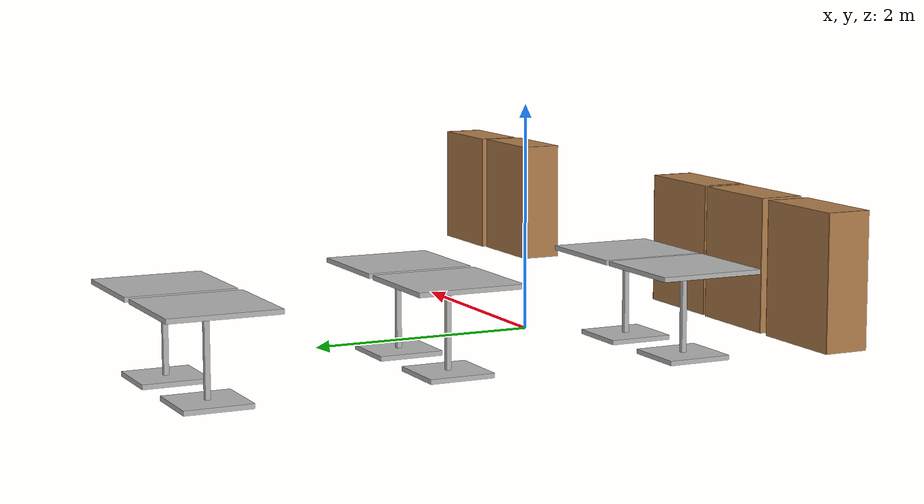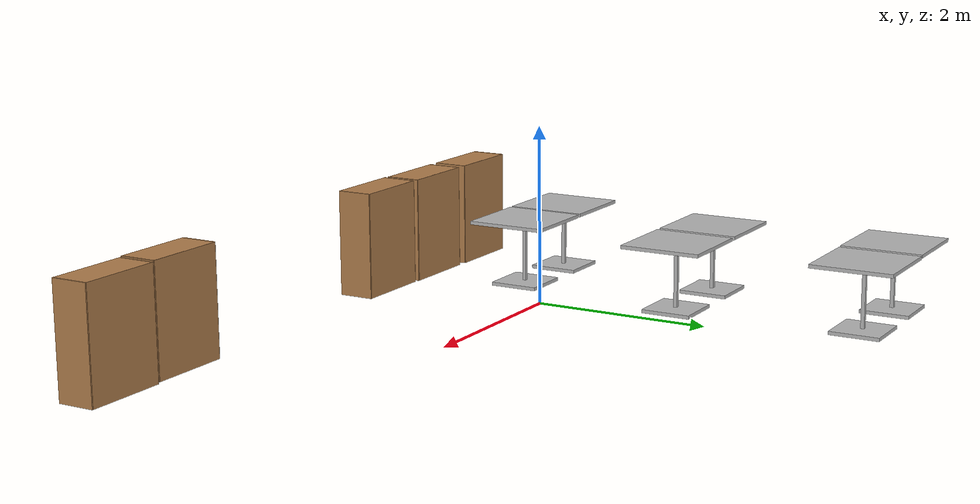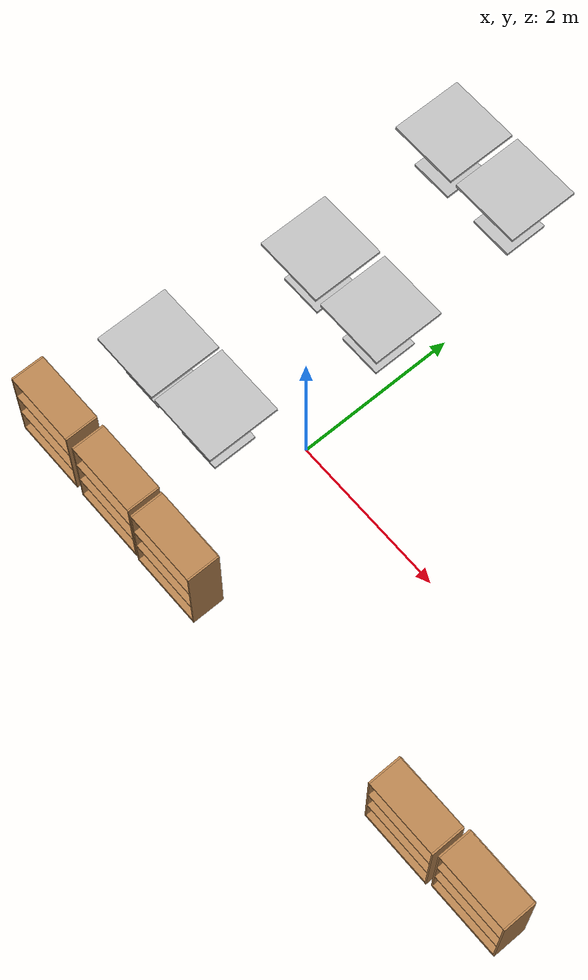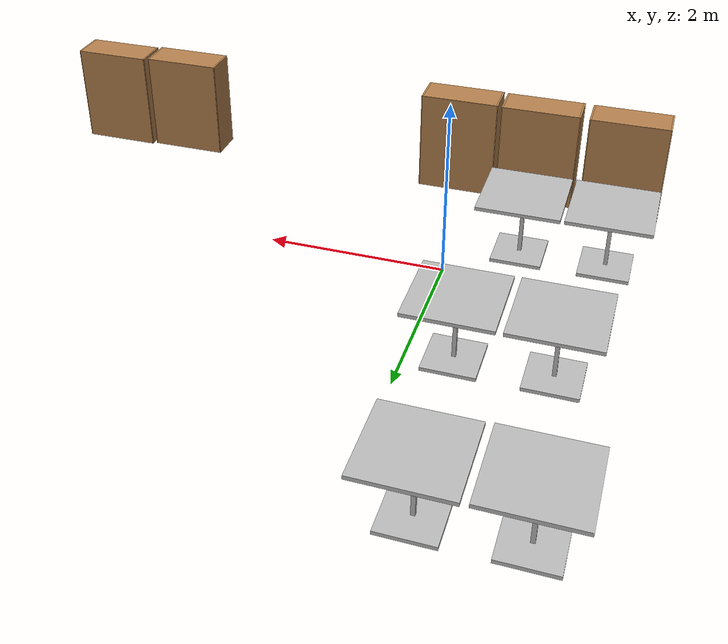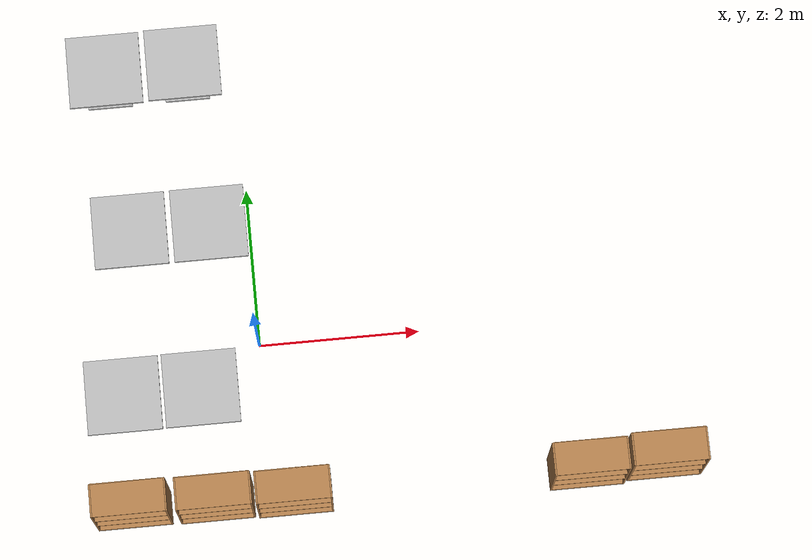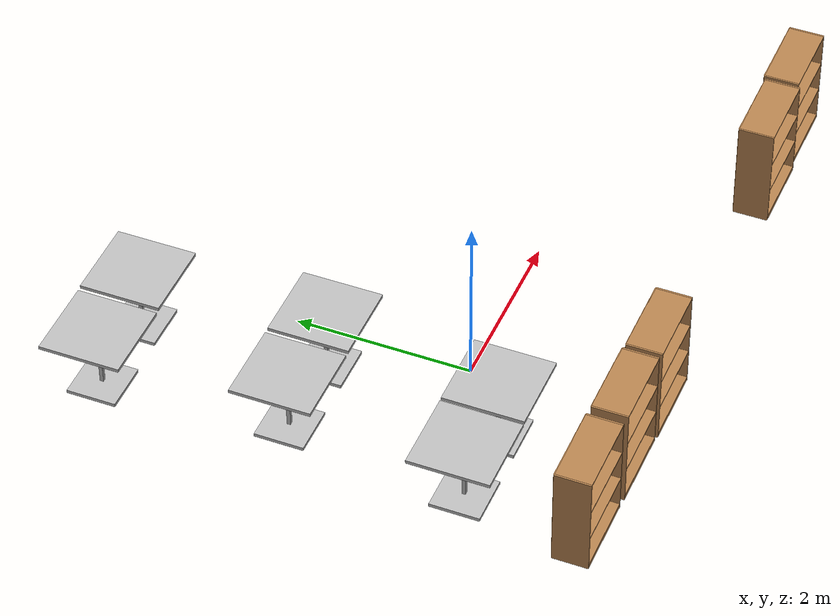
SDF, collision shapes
<?xml version='1.0'?>
<sdf version='1.7'>
  <model name='faux-office'>
    <model name='bookshelf'>
      <static>1</static>
      <link name='link'>
        <inertial>
          <mass>1</mass>
        </inertial>
        <collision name='back'>
          <pose>0 0.005 0.6 0 -0 0</pose>
          <geometry>
            <box>
              <size>0.9 0.01 1.2</size>
            </box>
          </geometry>
        </collision>
        <visual name='visual1'>
          <pose>0 0.005 0.6 0 -0 0</pose>
          <geometry>
            <box>
              <size>0.9 0.01 1.2</size>
            </box>
          </geometry>
          <material>
            <script>
              <uri>file://media/materials/scripts/gazebo.material</uri>
              <name>Gazebo/Wood</name>
            </script>
          </material>
        </visual>
        <collision name='left_side'>
          <pose>0.45 -0.195 0.6 0 -0 0</pose>
          <geometry>
            <box>
              <size>0.02 0.4 1.2</size>
            </box>
          </geometry>
        </collision>
        <visual name='visual2'>
          <pose>0.45 -0.195 0.6 0 -0 0</pose>
          <geometry>
            <box>
              <size>0.02 0.4 1.2</size>
            </box>
          </geometry>
          <material>
            <script>
              <uri>file://media/materials/scripts/gazebo.material</uri>
              <name>Gazebo/Wood</name>
            </script>
          </material>
        </visual>
        <collision name='right_side'>
          <pose>-0.45 -0.195 0.6 0 -0 0</pose>
          <geometry>
            <box>
              <size>0.02 0.4 1.2</size>
            </box>
          </geometry>
        </collision>
        <visual name='visual3'>
          <pose>-0.45 -0.195 0.6 0 -0 0</pose>
          <geometry>
            <box>
              <size>0.02 0.4 1.2</size>
            </box>
          </geometry>
          <material>
            <script>
              <uri>file://media/materials/scripts/gazebo.material</uri>
              <name>Gazebo/Wood</name>
            </script>
          </material>
        </visual>
        <collision name='bottom'>
          <pose>0 -0.195 0.03 0 -0 0</pose>
          <geometry>
            <box>
              <size>0.88 0.4 0.06</size>
            </box>
          </geometry>
        </collision>
        <visual name='visual4'>
          <pose>0 -0.195 0.03 0 -0 0</pose>
          <geometry>
            <box>
              <size>0.88 0.4 0.06</size>
            </box>
          </geometry>
          <material>
            <script>
              <uri>file://media/materials/scripts/gazebo.material</uri>
              <name>Gazebo/Wood</name>
            </script>
          </material>
        </visual>
        <collision name='top'>
          <pose>0 -0.195 1.19 0 -0 0</pose>
          <geometry>
            <box>
              <size>0.88 0.4 0.02</size>
            </box>
          </geometry>
        </collision>
        <visual name='visual5'>
          <pose>0 -0.195 1.19 0 -0 0</pose>
          <geometry>
            <box>
              <size>0.88 0.4 0.02</size>
            </box>
          </geometry>
          <material>
            <script>
              <uri>file://media/materials/scripts/gazebo.material</uri>
              <name>Gazebo/Wood</name>
            </script>
          </material>
        </visual>
        <collision name='low_shelf'>
          <pose>0 -0.195 0.43 0 -0 0</pose>
          <geometry>
            <box>
              <size>0.88 0.4 0.02</size>
            </box>
          </geometry>
        </collision>
        <visual name='visual6'>
          <pose>0 -0.195 0.43 0 -0 0</pose>
          <geometry>
            <box>
              <size>0.88 0.4 0.02</size>
            </box>
          </geometry>
          <material>
            <script>
              <uri>file://media/materials/scripts/gazebo.material</uri>
              <name>Gazebo/Wood</name>
            </script>
          </material>
        </visual>
        <collision name='high_shelf'>
          <pose>0 -0.195 0.8 0 -0 0</pose>
          <geometry>
            <box>
              <size>0.88 0.4 0.02</size>
            </box>
          </geometry>
        </collision>
        <visual name='visual7'>
          <pose>0 -0.195 0.8 0 -0 0</pose>
          <geometry>
            <box>
              <size>0.88 0.4 0.02</size>
            </box>
          </geometry>
          <material>
            <script>
              <uri>file://media/materials/scripts/gazebo.material</uri>
              <name>Gazebo/Wood</name>
            </script>
          </material>
        </visual>
      </link>
      <pose>-1.70086 -1.74218 0 0 -0 0</pose>
    </model>
    <model name='bookshelf_clone_0'>
      <static>1</static>
      <link name='link'>
        <inertial>
          <mass>1</mass>
        </inertial>
        <collision name='back'>
          <pose>0 0.005 0.6 0 -0 0</pose>
          <geometry>
            <box>
              <size>0.9 0.01 1.2</size>
            </box>
          </geometry>
        </collision>
        <visual name='visual1'>
          <pose>0 0.005 0.6 0 -0 0</pose>
          <geometry>
            <box>
              <size>0.9 0.01 1.2</size>
            </box>
          </geometry>
          <material>
            <script>
              <uri>file://media/materials/scripts/gazebo.material</uri>
              <name>Gazebo/Wood</name>
            </script>
          </material>
        </visual>
        <collision name='left_side'>
          <pose>0.45 -0.195 0.6 0 -0 0</pose>
          <geometry>
            <box>
              <size>0.02 0.4 1.2</size>
            </box>
          </geometry>
        </collision>
        <visual name='visual2'>
          <pose>0.45 -0.195 0.6 0 -0 0</pose>
          <geometry>
            <box>
              <size>0.02 0.4 1.2</size>
            </box>
          </geometry>
          <material>
            <script>
              <uri>file://media/materials/scripts/gazebo.material</uri>
              <name>Gazebo/Wood</name>
            </script>
          </material>
        </visual>
        <collision name='right_side'>
          <pose>-0.45 -0.195 0.6 0 -0 0</pose>
          <geometry>
            <box>
              <size>0.02 0.4 1.2</size>
            </box>
          </geometry>
        </collision>
        <visual name='visual3'>
          <pose>-0.45 -0.195 0.6 0 -0 0</pose>
          <geometry>
            <box>
              <size>0.02 0.4 1.2</size>
            </box>
          </geometry>
          <material>
            <script>
              <uri>file://media/materials/scripts/gazebo.material</uri>
              <name>Gazebo/Wood</name>
            </script>
          </material>
        </visual>
        <collision name='bottom'>
          <pose>0 -0.195 0.03 0 -0 0</pose>
          <geometry>
            <box>
              <size>0.88 0.4 0.06</size>
            </box>
          </geometry>
        </collision>
        <visual name='visual4'>
          <pose>0 -0.195 0.03 0 -0 0</pose>
          <geometry>
            <box>
              <size>0.88 0.4 0.06</size>
            </box>
          </geometry>
          <material>
            <script>
              <uri>file://media/materials/scripts/gazebo.material</uri>
              <name>Gazebo/Wood</name>
            </script>
          </material>
        </visual>
        <collision name='top'>
          <pose>0 -0.195 1.19 0 -0 0</pose>
          <geometry>
            <box>
              <size>0.88 0.4 0.02</size>
            </box>
          </geometry>
        </collision>
        <visual name='visual5'>
          <pose>0 -0.195 1.19 0 -0 0</pose>
          <geometry>
            <box>
              <size>0.88 0.4 0.02</size>
            </box>
          </geometry>
          <material>
            <script>
              <uri>file://media/materials/scripts/gazebo.material</uri>
              <name>Gazebo/Wood</name>
            </script>
          </material>
        </visual>
        <collision name='low_shelf'>
          <pose>0 -0.195 0.43 0 -0 0</pose>
          <geometry>
            <box>
              <size>0.88 0.4 0.02</size>
            </box>
          </geometry>
        </collision>
        <visual name='visual6'>
          <pose>0 -0.195 0.43 0 -0 0</pose>
          <geometry>
            <box>
              <size>0.88 0.4 0.02</size>
            </box>
          </geometry>
          <material>
            <script>
              <uri>file://media/materials/scripts/gazebo.material</uri>
              <name>Gazebo/Wood</name>
            </script>
          </material>
        </visual>
        <collision name='high_shelf'>
          <pose>0 -0.195 0.8 0 -0 0</pose>
          <geometry>
            <box>
              <size>0.88 0.4 0.02</size>
            </box>
          </geometry>
        </collision>
        <visual name='visual7'>
          <pose>0 -0.195 0.8 0 -0 0</pose>
          <geometry>
            <box>
              <size>0.88 0.4 0.02</size>
            </box>
          </geometry>
          <material>
            <script>
              <uri>file://media/materials/scripts/gazebo.material</uri>
              <name>Gazebo/Wood</name>
            </script>
          </material>
        </visual>
      </link>
      <pose>-0.681293 -1.75133 0 0 -0 0</pose>
    </model>
    <model name='bookshelf_clone_0_clone'>
      <static>1</static>
      <link name='link'>
        <inertial>
          <mass>1</mass>
        </inertial>
        <collision name='back'>
          <pose>0 0.005 0.6 0 -0 0</pose>
          <geometry>
            <box>
              <size>0.9 0.01 1.2</size>
            </box>
          </geometry>
        </collision>
        <visual name='visual1'>
          <pose>0 0.005 0.6 0 -0 0</pose>
          <geometry>
            <box>
              <size>0.9 0.01 1.2</size>
            </box>
          </geometry>
          <material>
            <script>
              <uri>file://media/materials/scripts/gazebo.material</uri>
              <name>Gazebo/Wood</name>
            </script>
          </material>
        </visual>
        <collision name='left_side'>
          <pose>0.45 -0.195 0.6 0 -0 0</pose>
          <geometry>
            <box>
              <size>0.02 0.4 1.2</size>
            </box>
          </geometry>
        </collision>
        <visual name='visual2'>
          <pose>0.45 -0.195 0.6 0 -0 0</pose>
          <geometry>
            <box>
              <size>0.02 0.4 1.2</size>
            </box>
          </geometry>
          <material>
            <script>
              <uri>file://media/materials/scripts/gazebo.material</uri>
              <name>Gazebo/Wood</name>
            </script>
          </material>
        </visual>
        <collision name='right_side'>
          <pose>-0.45 -0.195 0.6 0 -0 0</pose>
          <geometry>
            <box>
              <size>0.02 0.4 1.2</size>
            </box>
          </geometry>
        </collision>
        <visual name='visual3'>
          <pose>-0.45 -0.195 0.6 0 -0 0</pose>
          <geometry>
            <box>
              <size>0.02 0.4 1.2</size>
            </box>
          </geometry>
          <material>
            <script>
              <uri>file://media/materials/scripts/gazebo.material</uri>
              <name>Gazebo/Wood</name>
            </script>
          </material>
        </visual>
        <collision name='bottom'>
          <pose>0 -0.195 0.03 0 -0 0</pose>
          <geometry>
            <box>
              <size>0.88 0.4 0.06</size>
            </box>
          </geometry>
        </collision>
        <visual name='visual4'>
          <pose>0 -0.195 0.03 0 -0 0</pose>
          <geometry>
            <box>
              <size>0.88 0.4 0.06</size>
            </box>
          </geometry>
          <material>
            <script>
              <uri>file://media/materials/scripts/gazebo.material</uri>
              <name>Gazebo/Wood</name>
            </script>
          </material>
        </visual>
        <collision name='top'>
          <pose>0 -0.195 1.19 0 -0 0</pose>
          <geometry>
            <box>
              <size>0.88 0.4 0.02</size>
            </box>
          </geometry>
        </collision>
        <visual name='visual5'>
          <pose>0 -0.195 1.19 0 -0 0</pose>
          <geometry>
            <box>
              <size>0.88 0.4 0.02</size>
            </box>
          </geometry>
          <material>
            <script>
              <uri>file://media/materials/scripts/gazebo.material</uri>
              <name>Gazebo/Wood</name>
            </script>
          </material>
        </visual>
        <collision name='low_shelf'>
          <pose>0 -0.195 0.43 0 -0 0</pose>
          <geometry>
            <box>
              <size>0.88 0.4 0.02</size>
            </box>
          </geometry>
        </collision>
        <visual name='visual6'>
          <pose>0 -0.195 0.43 0 -0 0</pose>
          <geometry>
            <box>
              <size>0.88 0.4 0.02</size>
            </box>
          </geometry>
          <material>
            <script>
              <uri>file://media/materials/scripts/gazebo.material</uri>
              <name>Gazebo/Wood</name>
            </script>
          </material>
        </visual>
        <collision name='high_shelf'>
          <pose>0 -0.195 0.8 0 -0 0</pose>
          <geometry>
            <box>
              <size>0.88 0.4 0.02</size>
            </box>
          </geometry>
        </collision>
        <visual name='visual7'>
          <pose>0 -0.195 0.8 0 -0 0</pose>
          <geometry>
            <box>
              <size>0.88 0.4 0.02</size>
            </box>
          </geometry>
          <material>
            <script>
              <uri>file://media/materials/scripts/gazebo.material</uri>
              <name>Gazebo/Wood</name>
            </script>
          </material>
        </visual>
      </link>
      <pose>0.283423 -1.76584 0 0 -0 0</pose>
    </model>
    <model name='bookshelf_clone_0_clone_clone'>
      <static>1</static>
      <link name='link'>
        <inertial>
          <mass>1</mass>
        </inertial>
        <collision name='back'>
          <pose>0 0.005 0.6 0 -0 0</pose>
          <geometry>
            <box>
              <size>0.9 0.01 1.2</size>
            </box>
          </geometry>
        </collision>
        <visual name='visual1'>
          <pose>0 0.005 0.6 0 -0 0</pose>
          <geometry>
            <box>
              <size>0.9 0.01 1.2</size>
            </box>
          </geometry>
          <material>
            <script>
              <uri>file://media/materials/scripts/gazebo.material</uri>
              <name>Gazebo/Wood</name>
            </script>
          </material>
        </visual>
        <collision name='left_side'>
          <pose>0.45 -0.195 0.6 0 -0 0</pose>
          <geometry>
            <box>
              <size>0.02 0.4 1.2</size>
            </box>
          </geometry>
        </collision>
        <visual name='visual2'>
          <pose>0.45 -0.195 0.6 0 -0 0</pose>
          <geometry>
            <box>
              <size>0.02 0.4 1.2</size>
            </box>
          </geometry>
          <material>
            <script>
              <uri>file://media/materials/scripts/gazebo.material</uri>
              <name>Gazebo/Wood</name>
            </script>
          </material>
        </visual>
        <collision name='right_side'>
          <pose>-0.45 -0.195 0.6 0 -0 0</pose>
          <geometry>
            <box>
              <size>0.02 0.4 1.2</size>
            </box>
          </geometry>
        </collision>
        <visual name='visual3'>
          <pose>-0.45 -0.195 0.6 0 -0 0</pose>
          <geometry>
            <box>
              <size>0.02 0.4 1.2</size>
            </box>
          </geometry>
          <material>
            <script>
              <uri>file://media/materials/scripts/gazebo.material</uri>
              <name>Gazebo/Wood</name>
            </script>
          </material>
        </visual>
        <collision name='bottom'>
          <pose>0 -0.195 0.03 0 -0 0</pose>
          <geometry>
            <box>
              <size>0.88 0.4 0.06</size>
            </box>
          </geometry>
        </collision>
        <visual name='visual4'>
          <pose>0 -0.195 0.03 0 -0 0</pose>
          <geometry>
            <box>
              <size>0.88 0.4 0.06</size>
            </box>
          </geometry>
          <material>
            <script>
              <uri>file://media/materials/scripts/gazebo.material</uri>
              <name>Gazebo/Wood</name>
            </script>
          </material>
        </visual>
        <collision name='top'>
          <pose>0 -0.195 1.19 0 -0 0</pose>
          <geometry>
            <box>
              <size>0.88 0.4 0.02</size>
            </box>
          </geometry>
        </collision>
        <visual name='visual5'>
          <pose>0 -0.195 1.19 0 -0 0</pose>
          <geometry>
            <box>
              <size>0.88 0.4 0.02</size>
            </box>
          </geometry>
          <material>
            <script>
              <uri>file://media/materials/scripts/gazebo.material</uri>
              <name>Gazebo/Wood</name>
            </script>
          </material>
        </visual>
        <collision name='low_shelf'>
          <pose>0 -0.195 0.43 0 -0 0</pose>
          <geometry>
            <box>
              <size>0.88 0.4 0.02</size>
            </box>
          </geometry>
        </collision>
        <visual name='visual6'>
          <pose>0 -0.195 0.43 0 -0 0</pose>
          <geometry>
            <box>
              <size>0.88 0.4 0.02</size>
            </box>
          </geometry>
          <material>
            <script>
              <uri>file://media/materials/scripts/gazebo.material</uri>
              <name>Gazebo/Wood</name>
            </script>
          </material>
        </visual>
        <collision name='high_shelf'>
          <pose>0 -0.195 0.8 0 -0 0</pose>
          <geometry>
            <box>
              <size>0.88 0.4 0.02</size>
            </box>
          </geometry>
        </collision>
        <visual name='visual7'>
          <pose>0 -0.195 0.8 0 -0 0</pose>
          <geometry>
            <box>
              <size>0.88 0.4 0.02</size>
            </box>
          </geometry>
          <material>
            <script>
              <uri>file://media/materials/scripts/gazebo.material</uri>
              <name>Gazebo/Wood</name>
            </script>
          </material>
        </visual>
      </link>
      <pose>3.88748 -1.75471 0 0 -0 0</pose>
    </model>
    <model name='bookshelf_clone_0_clone_clone_clone'>
      <static>1</static>
      <link name='link'>
        <inertial>
          <mass>1</mass>
        </inertial>
        <collision name='back'>
          <pose>0 0.005 0.6 0 -0 0</pose>
          <geometry>
            <box>
              <size>0.9 0.01 1.2</size>
            </box>
          </geometry>
        </collision>
        <visual name='visual1'>
          <pose>0 0.005 0.6 0 -0 0</pose>
          <geometry>
            <box>
              <size>0.9 0.01 1.2</size>
            </box>
          </geometry>
          <material>
            <script>
              <uri>file://media/materials/scripts/gazebo.material</uri>
              <name>Gazebo/Wood</name>
            </script>
          </material>
        </visual>
        <collision name='left_side'>
          <pose>0.45 -0.195 0.6 0 -0 0</pose>
          <geometry>
            <box>
              <size>0.02 0.4 1.2</size>
            </box>
          </geometry>
        </collision>
        <visual name='visual2'>
          <pose>0.45 -0.195 0.6 0 -0 0</pose>
          <geometry>
            <box>
              <size>0.02 0.4 1.2</size>
            </box>
          </geometry>
          <material>
            <script>
              <uri>file://media/materials/scripts/gazebo.material</uri>
              <name>Gazebo/Wood</name>
            </script>
          </material>
        </visual>
        <collision name='right_side'>
          <pose>-0.45 -0.195 0.6 0 -0 0</pose>
          <geometry>
            <box>
              <size>0.02 0.4 1.2</size>
            </box>
          </geometry>
        </collision>
        <visual name='visual3'>
          <pose>-0.45 -0.195 0.6 0 -0 0</pose>
          <geometry>
            <box>
              <size>0.02 0.4 1.2</size>
            </box>
          </geometry>
          <material>
            <script>
              <uri>file://media/materials/scripts/gazebo.material</uri>
              <name>Gazebo/Wood</name>
            </script>
          </material>
        </visual>
        <collision name='bottom'>
          <pose>0 -0.195 0.03 0 -0 0</pose>
          <geometry>
            <box>
              <size>0.88 0.4 0.06</size>
            </box>
          </geometry>
        </collision>
        <visual name='visual4'>
          <pose>0 -0.195 0.03 0 -0 0</pose>
          <geometry>
            <box>
              <size>0.88 0.4 0.06</size>
            </box>
          </geometry>
          <material>
            <script>
              <uri>file://media/materials/scripts/gazebo.material</uri>
              <name>Gazebo/Wood</name>
            </script>
          </material>
        </visual>
        <collision name='top'>
          <pose>0 -0.195 1.19 0 -0 0</pose>
          <geometry>
            <box>
              <size>0.88 0.4 0.02</size>
            </box>
          </geometry>
        </collision>
        <visual name='visual5'>
          <pose>0 -0.195 1.19 0 -0 0</pose>
          <geometry>
            <box>
              <size>0.88 0.4 0.02</size>
            </box>
          </geometry>
          <material>
            <script>
              <uri>file://media/materials/scripts/gazebo.material</uri>
              <name>Gazebo/Wood</name>
            </script>
          </material>
        </visual>
        <collision name='low_shelf'>
          <pose>0 -0.195 0.43 0 -0 0</pose>
          <geometry>
            <box>
              <size>0.88 0.4 0.02</size>
            </box>
          </geometry>
        </collision>
        <visual name='visual6'>
          <pose>0 -0.195 0.43 0 -0 0</pose>
          <geometry>
            <box>
              <size>0.88 0.4 0.02</size>
            </box>
          </geometry>
          <material>
            <script>
              <uri>file://media/materials/scripts/gazebo.material</uri>
              <name>Gazebo/Wood</name>
            </script>
          </material>
        </visual>
        <collision name='high_shelf'>
          <pose>0 -0.195 0.8 0 -0 0</pose>
          <geometry>
            <box>
              <size>0.88 0.4 0.02</size>
            </box>
          </geometry>
        </collision>
        <visual name='visual7'>
          <pose>0 -0.195 0.8 0 -0 0</pose>
          <geometry>
            <box>
              <size>0.88 0.4 0.02</size>
            </box>
          </geometry>
          <material>
            <script>
              <uri>file://media/materials/scripts/gazebo.material</uri>
              <name>Gazebo/Wood</name>
            </script>
          </material>
        </visual>
      </link>
      <pose>4.84521 -1.72233 0 0 -0 0</pose>
    </model>
    <model name='cafe_table'>
      <static>1</static>
      <link name='link'>
        <collision name='surface'>
          <pose>0 0 0.755 0 -0 0</pose>
          <geometry>
            <box>
              <size>0.913 0.913 0.04</size>
            </box>
          </geometry>
        </collision>
        <collision name='column'>
          <pose>0 0 0.37 0 -0 0</pose>
          <geometry>
            <box>
              <size>0.042 0.042 0.74</size>
            </box>
          </geometry>
        </collision>
        <collision name='base'>
          <pose>0 0 0.02 0 -0 0</pose>
          <geometry>
            <box>
              <size>0.56 0.56 0.04</size>
            </box>
          </geometry>
        </collision>
        <visual name='visual'>
          <geometry>
            <mesh>
              <uri>model://cafe_table/meshes/cafe_table.dae</uri>
            </mesh>
          </geometry>
        </visual>
      </link>
      <pose>-1.69384 -0.611372 0 0 -0 0</pose>
    </model>
    <model name='cafe_table_clone'>
      <static>1</static>
      <link name='link'>
        <collision name='surface'>
          <pose>0 0 0.755 0 -0 0</pose>
          <geometry>
            <box>
              <size>0.913 0.913 0.04</size>
            </box>
          </geometry>
        </collision>
        <collision name='column'>
          <pose>0 0 0.37 0 -0 0</pose>
          <geometry>
            <box>
              <size>0.042 0.042 0.74</size>
            </box>
          </geometry>
        </collision>
        <collision name='base'>
          <pose>0 0 0.02 0 -0 0</pose>
          <geometry>
            <box>
              <size>0.56 0.56 0.04</size>
            </box>
          </geometry>
        </collision>
        <visual name='visual'>
          <geometry>
            <mesh>
              <uri>model://cafe_table/meshes/cafe_table.dae</uri>
            </mesh>
          </geometry>
        </visual>
      </link>
      <pose>-1.46003 1.44409 0 0 -0 0</pose>
    </model>
    <model name='cafe_table_clone_0'>
      <static>1</static>
      <link name='link'>
        <collision name='surface'>
          <pose>0 0 0.755 0 -0 0</pose>
          <geometry>
            <box>
              <size>0.913 0.913 0.04</size>
            </box>
          </geometry>
        </collision>
        <collision name='column'>
          <pose>0 0 0.37 0 -0 0</pose>
          <geometry>
            <box>
              <size>0.042 0.042 0.74</size>
            </box>
          </geometry>
        </collision>
        <collision name='base'>
          <pose>0 0 0.02 0 -0 0</pose>
          <geometry>
            <box>
              <size>0.56 0.56 0.04</size>
            </box>
          </geometry>
        </collision>
        <visual name='visual'>
          <geometry>
            <mesh>
              <uri>model://cafe_table/meshes/cafe_table.dae</uri>
            </mesh>
          </geometry>
        </visual>
      </link>
      <pose>-1.62364 3.52517 0 0 -0 0</pose>
    </model>
    <model name='cafe_table_clone_1'>
      <static>1</static>
      <link name='link'>
        <collision name='surface'>
          <pose>0 0 0.755 0 -0 0</pose>
          <geometry>
            <box>
              <size>0.913 0.913 0.04</size>
            </box>
          </geometry>
        </collision>
        <collision name='column'>
          <pose>0 0 0.37 0 -0 0</pose>
          <geometry>
            <box>
              <size>0.042 0.042 0.74</size>
            </box>
          </geometry>
        </collision>
        <collision name='base'>
          <pose>0 0 0.02 0 -0 0</pose>
          <geometry>
            <box>
              <size>0.56 0.56 0.04</size>
            </box>
          </geometry>
        </collision>
        <visual name='visual'>
          <geometry>
            <mesh>
              <uri>model://cafe_table/meshes/cafe_table.dae</uri>
            </mesh>
          </geometry>
        </visual>
      </link>
      <pose>-0.738969 -0.606133 0 0 -0 0</pose>
    </model>
    <model name='cafe_table_clone_2'>
      <static>1</static>
      <link name='link'>
        <collision name='surface'>
          <pose>0 0 0.755 0 -0 0</pose>
          <geometry>
            <box>
              <size>0.913 0.913 0.04</size>
            </box>
          </geometry>
        </collision>
        <collision name='column'>
          <pose>0 0 0.37 0 -0 0</pose>
          <geometry>
            <box>
              <size>0.042 0.042 0.74</size>
            </box>
          </geometry>
        </collision>
        <collision name='base'>
          <pose>0 0 0.02 0 -0 0</pose>
          <geometry>
            <box>
              <size>0.56 0.56 0.04</size>
            </box>
          </geometry>
        </collision>
        <visual name='visual'>
          <geometry>
            <mesh>
              <uri>model://cafe_table/meshes/cafe_table.dae</uri>
            </mesh>
          </geometry>
        </visual>
      </link>
      <pose>-0.477392 1.44714 0 0 -0 0</pose>
    </model>
    <model name='cafe_table_clone_3'>
      <static>1</static>
      <link name='link'>
        <collision name='surface'>
          <pose>0 0 0.755 0 -0 0</pose>
          <geometry>
            <box>
              <size>0.913 0.913 0.04</size>
            </box>
          </geometry>
        </collision>
        <collision name='column'>
          <pose>0 0 0.37 0 -0 0</pose>
          <geometry>
            <box>
              <size>0.042 0.042 0.74</size>
            </box>
          </geometry>
        </collision>
        <collision name='base'>
          <pose>0 0 0.02 0 -0 0</pose>
          <geometry>
            <box>
              <size>0.56 0.56 0.04</size>
            </box>
          </geometry>
        </collision>
        <visual name='visual'>
          <geometry>
            <mesh>
              <uri>model://cafe_table/meshes/cafe_table.dae</uri>
            </mesh>
          </geometry>
        </visual>
      </link>
      <pose>-0.640083 3.5375 0 0 -0 0</pose>
    </model>
    <static>0</static>
    <allow_auto_disable>1</allow_auto_disable>
  </model>
</sdf>
